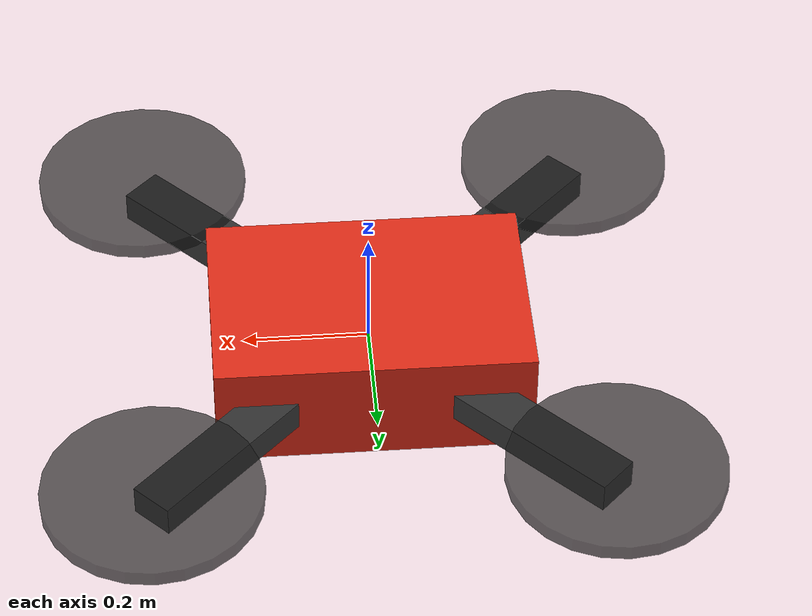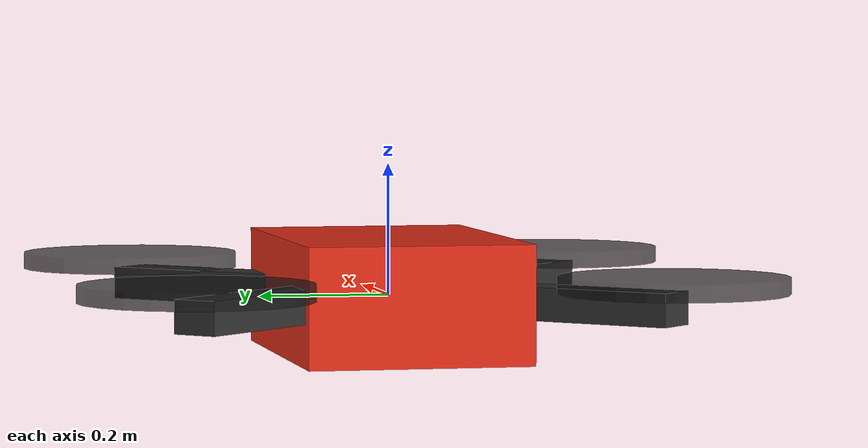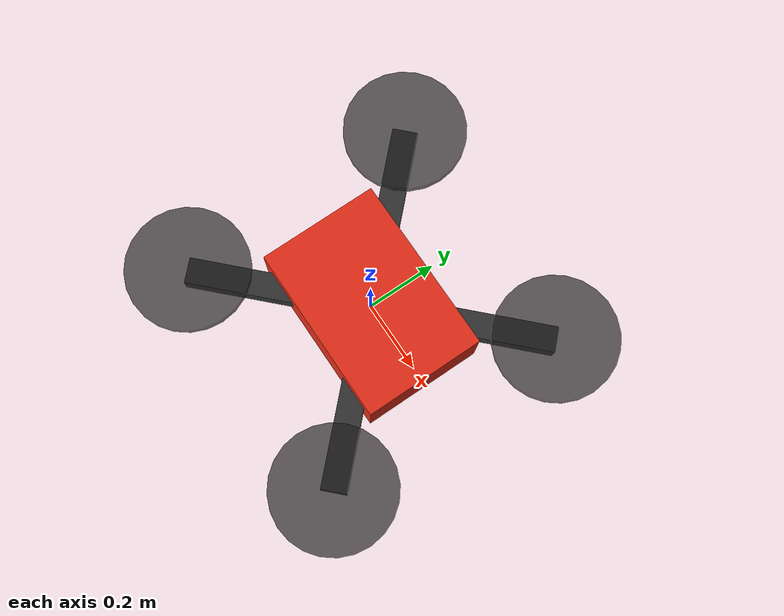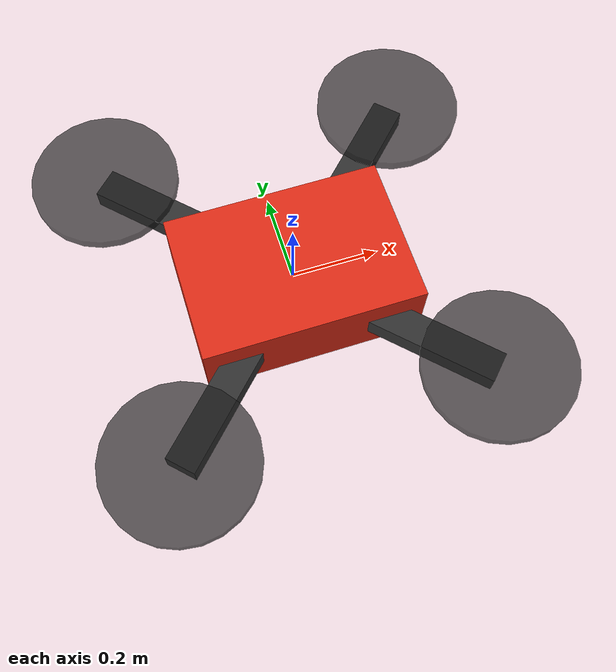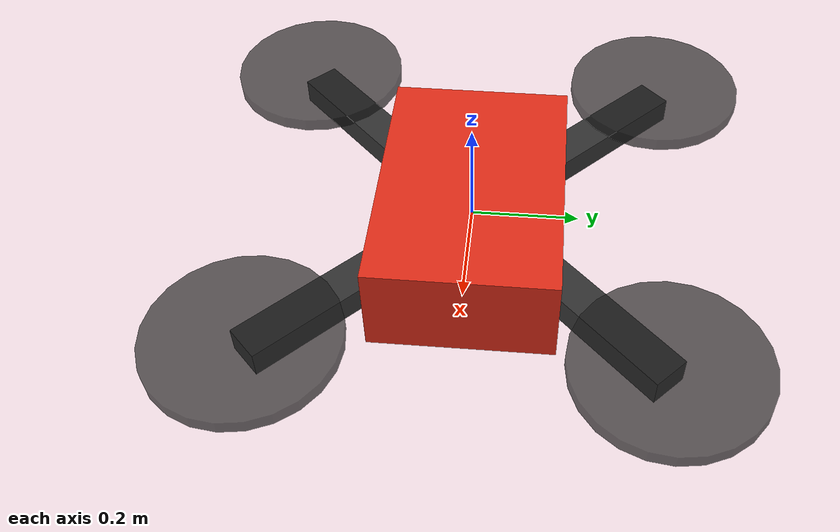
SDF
<?xml version="1.0"?>
<sdf version="1.6">
  <model name="simplified_target_uav">
    <!-- Dynamic so a scenario controller can command pose/twist through Gazebo.
         Gravity is disabled to make an uncommanded target hold its initial pose. -->
    <static>false</static>
    <self_collide>false</self_collide>
    <allow_auto_disable>false</allow_auto_disable>

    <link name="base_link">
      <gravity>false</gravity>
      <velocity_decay>
        <linear>0</linear>
        <angular>0</angular>
      </velocity_decay>
      <inertial>
        <mass>1.2</mass>
        <inertia>
          <ixx>0.030</ixx>
          <ixy>0</ixy>
          <ixz>0</ixz>
          <iyy>0.030</iyy>
          <iyz>0</iyz>
          <izz>0.055</izz>
        </inertia>
      </inertial>

      <collision name="body_collision">
        <geometry>
          <box>
            <size>0.50 0.34 0.18</size>
          </box>
        </geometry>
        <surface>
          <contact>
            <collide_without_contact>true</collide_without_contact>
          </contact>
        </surface>
      </collision>
      <visual name="body_visual">
        <geometry>
          <box>
            <size>0.50 0.34 0.18</size>
          </box>
        </geometry>
        <material>
          <ambient>0.70 0.12 0.08 1</ambient>
          <diffuse>0.90 0.18 0.10 1</diffuse>
        </material>
      </visual>

      <collision name="arm_a_collision">
        <pose>0 0 0 0 0 0.7853981633974483</pose>
        <geometry>
          <box>
            <size>1.00 0.07 0.05</size>
          </box>
        </geometry>
      </collision>
      <visual name="arm_a_visual">
        <pose>0 0 0 0 0 0.7853981633974483</pose>
        <geometry>
          <box>
            <size>1.00 0.07 0.05</size>
          </box>
        </geometry>
        <material>
          <ambient>0.13 0.13 0.13 1</ambient>
          <diffuse>0.20 0.20 0.20 1</diffuse>
        </material>
      </visual>

      <collision name="arm_b_collision">
        <pose>0 0 0 0 0 -0.7853981633974483</pose>
        <geometry>
          <box>
            <size>1.00 0.07 0.05</size>
          </box>
        </geometry>
      </collision>
      <visual name="arm_b_visual">
        <pose>0 0 0 0 0 -0.7853981633974483</pose>
        <geometry>
          <box>
            <size>1.00 0.07 0.05</size>
          </box>
        </geometry>
        <material>
          <ambient>0.13 0.13 0.13 1</ambient>
          <diffuse>0.20 0.20 0.20 1</diffuse>
        </material>
      </visual>

      <!-- Four thin rotor discs enlarge the ray-visible silhouette while
           retaining primitive, deterministic collision geometry. -->
      <collision name="rotor_fl_collision">
        <pose>0.35 0.35 0.035 0 0 0</pose>
        <geometry><cylinder><radius>0.17</radius><length>0.025</length></cylinder></geometry>
      </collision>
      <visual name="rotor_fl_visual">
        <pose>0.35 0.35 0.035 0 0 0</pose>
        <geometry><cylinder><radius>0.17</radius><length>0.025</length></cylinder></geometry>
        <material><ambient>0.08 0.08 0.08 0.7</ambient><diffuse>0.12 0.12 0.12 0.7</diffuse></material>
      </visual>

      <collision name="rotor_fr_collision">
        <pose>0.35 -0.35 0.035 0 0 0</pose>
        <geometry><cylinder><radius>0.17</radius><length>0.025</length></cylinder></geometry>
      </collision>
      <visual name="rotor_fr_visual">
        <pose>0.35 -0.35 0.035 0 0 0</pose>
        <geometry><cylinder><radius>0.17</radius><length>0.025</length></cylinder></geometry>
        <material><ambient>0.08 0.08 0.08 0.7</ambient><diffuse>0.12 0.12 0.12 0.7</diffuse></material>
      </visual>

      <collision name="rotor_rl_collision">
        <pose>-0.35 0.35 0.035 0 0 0</pose>
        <geometry><cylinder><radius>0.17</radius><length>0.025</length></cylinder></geometry>
      </collision>
      <visual name="rotor_rl_visual">
        <pose>-0.35 0.35 0.035 0 0 0</pose>
        <geometry><cylinder><radius>0.17</radius><length>0.025</length></cylinder></geometry>
        <material><ambient>0.08 0.08 0.08 0.7</ambient><diffuse>0.12 0.12 0.12 0.7</diffuse></material>
      </visual>

      <collision name="rotor_rr_collision">
        <pose>-0.35 -0.35 0.035 0 0 0</pose>
        <geometry><cylinder><radius>0.17</radius><length>0.025</length></cylinder></geometry>
      </collision>
      <visual name="rotor_rr_visual">
        <pose>-0.35 -0.35 0.035 0 0 0</pose>
        <geometry><cylinder><radius>0.17</radius><length>0.025</length></cylinder></geometry>
        <material><ambient>0.08 0.08 0.08 0.7</ambient><diffuse>0.12 0.12 0.12 0.7</diffuse></material>
      </visual>
    </link>
  </model>
</sdf>
